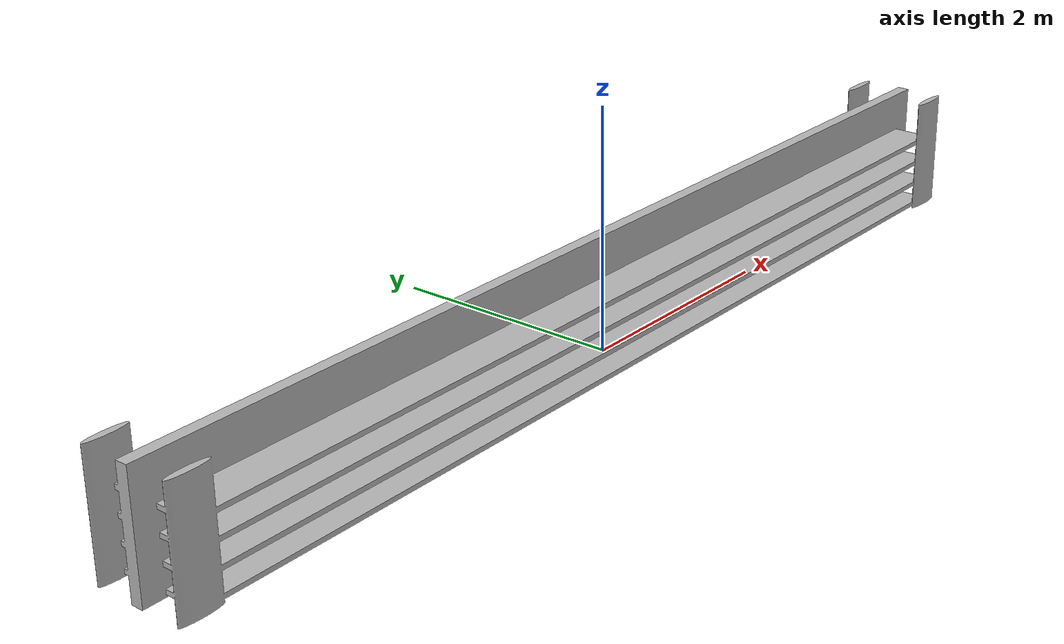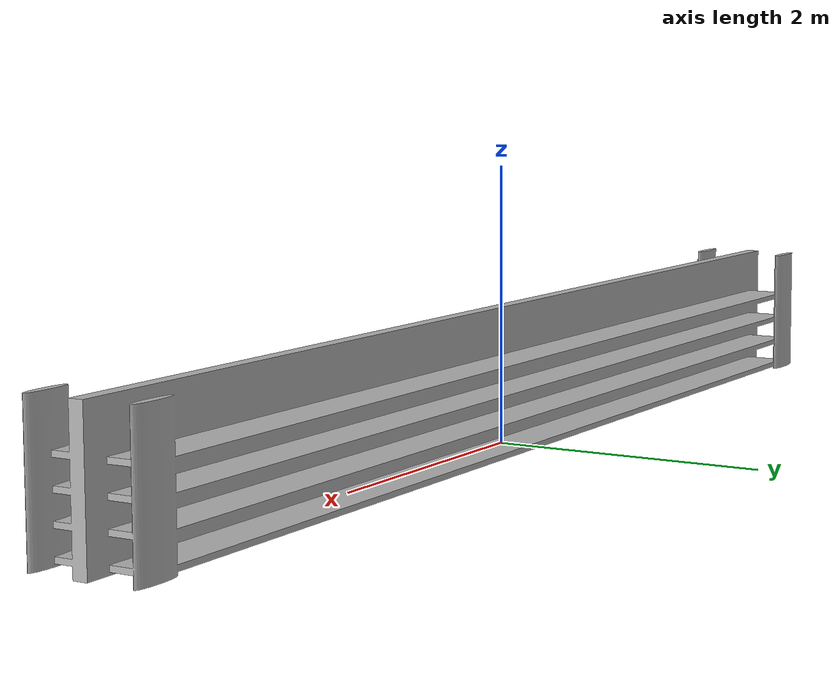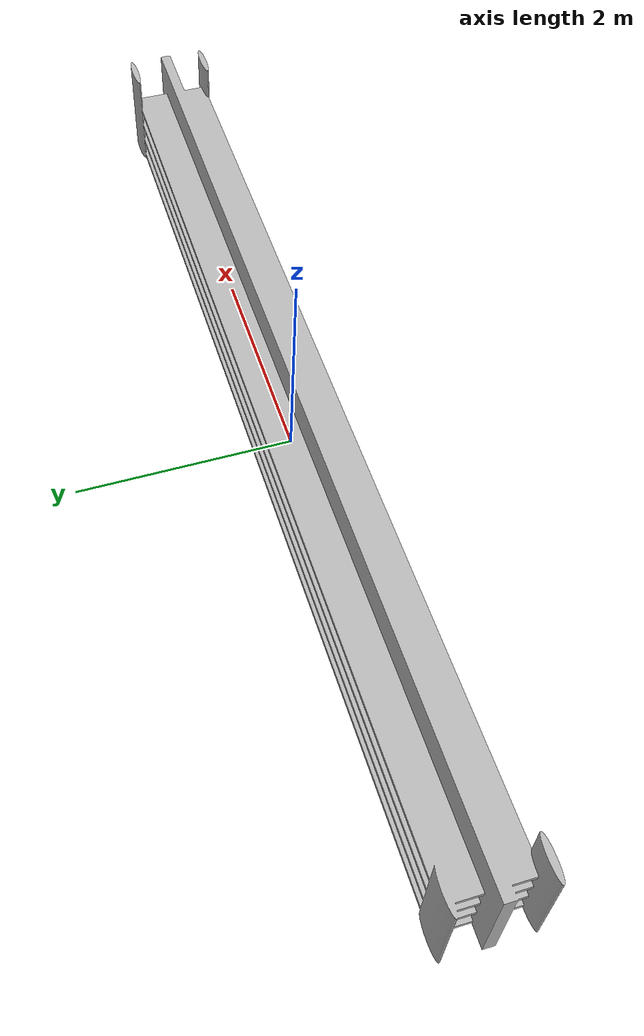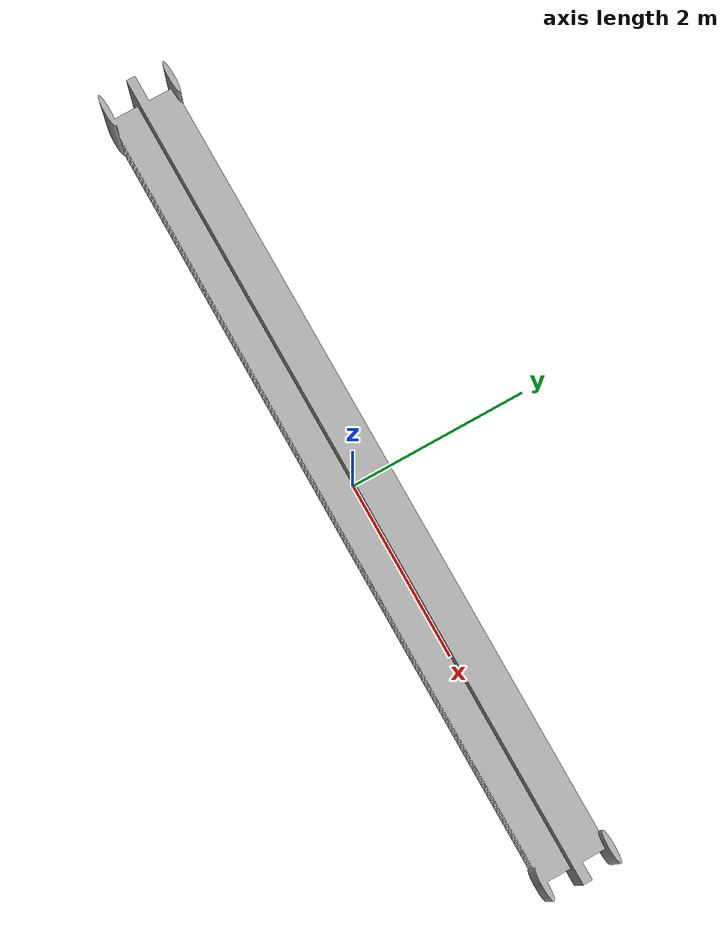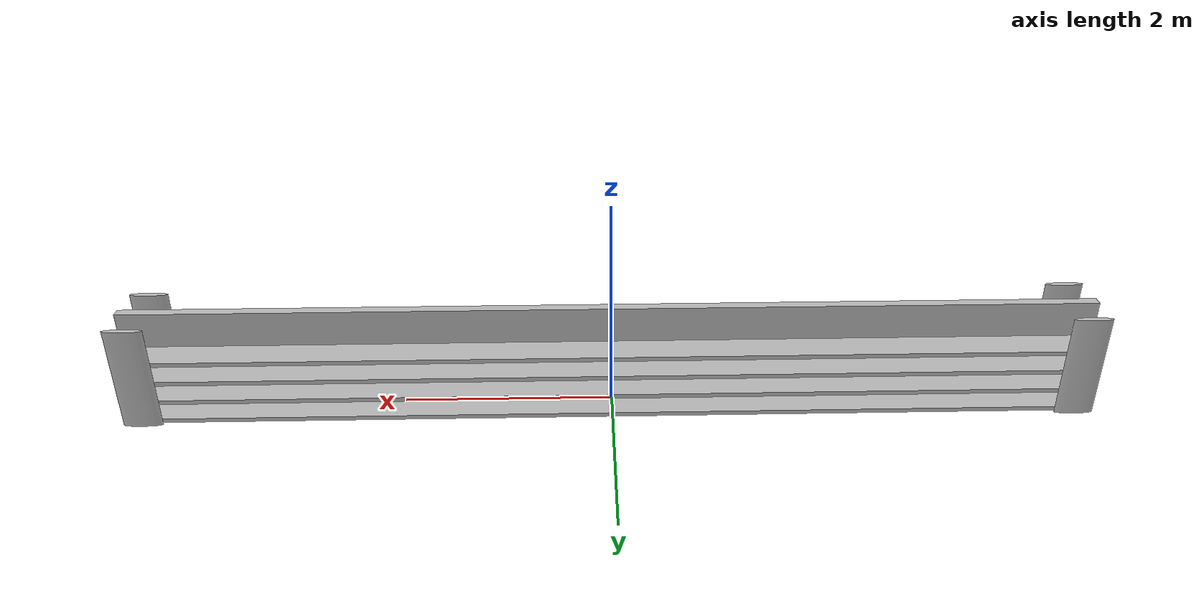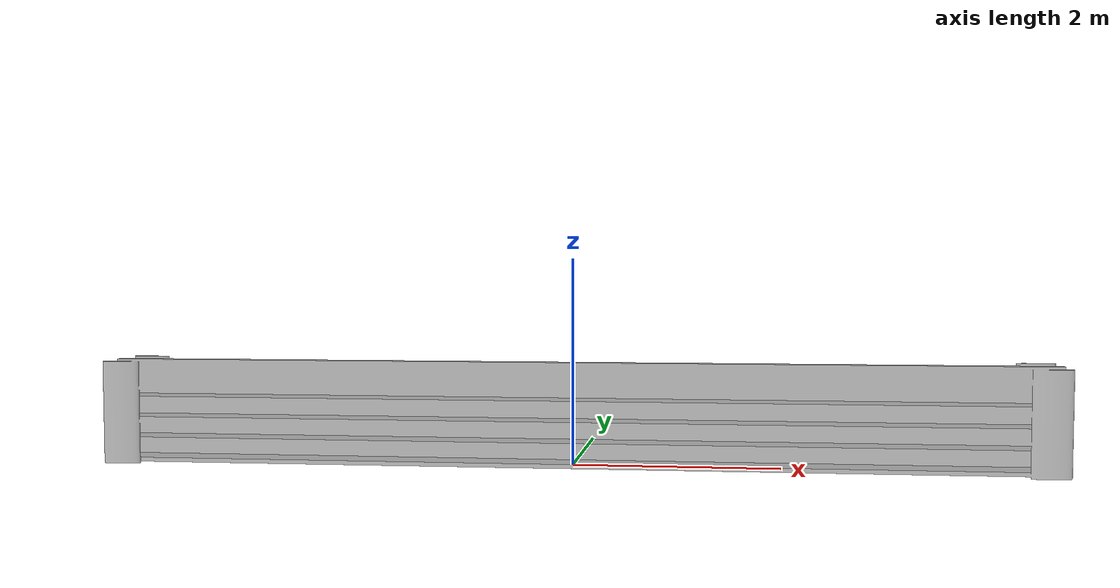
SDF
<?xml version="1.0" ?>
<sdf version="1.6">
  <model name="shelf">
    <static>true</static>
    <link name="link">
      <collision name="collision">
        <pose>0 0 0 0 0 0</pose>
        <geometry>
          <box>
            <size>1 1 3</size>
          </box>
        </geometry>
      </collision>
      <visual name="visual">
        <pose>0 0 0 0 0 0</pose>
        <geometry>
          <mesh>
            <uri>model://workspaces/workspace/shelf.dae</uri>
          </mesh>
        </geometry>
      </visual>
    </link>
  </model>
</sdf>
